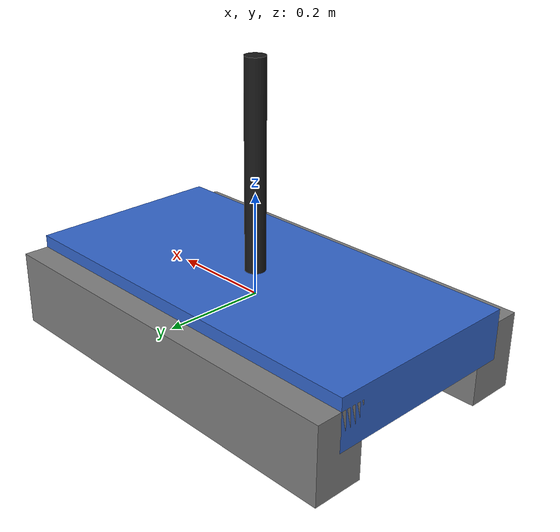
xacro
<?xml version="1.0"?>

<robot xmlns:xacro="http://www.ros.org/wiki/xacro"
       name="water_robot">

  <xacro:property name="platform_length" value="0.8"/>
  <xacro:property name="platform_width" value="0.4"/>
  <xacro:property name="platform_height" value="0.1"/>

  <xacro:property name="hull_length" value="0.8"/>
  <xacro:property name="hull_width" value="0.1"/>
  <xacro:property name="hull_height" value="0.15"/>
  <!-- Main Platform -->
  <link name="base_link">

  <visual>
    <geometry>
      <box size="${platform_length} ${platform_width} ${platform_height}"/>
    </geometry>
    <material name="blue">
      <color rgba="0.2 0.4 0.8 1.0"/>
    </material>
  </visual>

  <collision>
    <geometry>
      <box size="${platform_length} ${platform_width} ${platform_height}"/>
    </geometry>
  </collision>

  <inertial>
    <origin xyz="0 0 0"/>
    <mass value="5.0"/>
    <inertia
      ixx="0.1"
      ixy="0.0"
      ixz="0.0"
      iyy="0.1"
      iyz="0.0"
      izz="0.1"/>
  </inertial>

</link>
  <!-- Left Hull -->
  <link name="left_hull">

  <visual>
    <geometry>
      <box size="${hull_length} ${hull_width} ${hull_height}"/>
    </geometry>
    <material name="gray">
      <color rgba="0.5 0.5 0.5 1.0"/>
    </material>
  </visual>

  <collision>
    <geometry>
      <box size="${hull_length} ${hull_width} ${hull_height}"/>
    </geometry>
  </collision>

  <inertial>
    <origin xyz="0 0 0"/>
    <mass value="2.0"/>
    <inertia
      ixx="0.05"
      ixy="0.0"
      ixz="0.0"
      iyy="0.05"
      iyz="0.0"
      izz="0.05"/>
  </inertial>

</link>

  <joint name="left_hull_joint" type="fixed">
    <parent link="base_link"/>
    <child link="left_hull"/>
    <origin xyz="0 0.2 -0.05"/>
  </joint>

  <!-- Right Hull -->
  <link name="right_hull">

  <visual>
    <geometry>
      <box size="${hull_length} ${hull_width} ${hull_height}"/>
    </geometry>
    <material name="gray">
      <color rgba="0.5 0.5 0.5 1.0"/>
    </material>
  </visual>

  <collision>
    <geometry>
      <box size="${hull_length} ${hull_width} ${hull_height}"/>
    </geometry>
  </collision>

  <inertial>
    <origin xyz="0 0 0"/>
    <mass value="2.0"/>
    <inertia
      ixx="0.05"
      ixy="0.0"
      ixz="0.0"
      iyy="0.05"
      iyz="0.0"
      izz="0.05"/>
  </inertial>

</link>

  <joint name="right_hull_joint" type="fixed">
    <parent link="base_link"/>
    <child link="right_hull"/>
    <origin xyz="0 -0.2 -0.05"/>
  </joint>

  <!-- Camera Mast -->
  <link name="camera_mast">

  <visual>
    <geometry>
      <cylinder radius="0.02" length="0.4"/>
    </geometry>
    <material name="black">
      <color rgba="0.1 0.1 0.1 1.0"/>
    </material>
  </visual>

  <collision>
    <geometry>
      <cylinder radius="0.02" length="0.4"/>
    </geometry>
  </collision>

  <inertial>
    <origin xyz="0 0 0"/>
    <mass value="0.2"/>
    <inertia
      ixx="0.001"
      ixy="0.0"
      ixz="0.0"
      iyy="0.001"
      iyz="0.0"
      izz="0.001"/>
  </inertial>

</link>
  <joint name="mast_joint" type="fixed">
    <parent link="base_link"/>
    <child link="camera_mast"/>
    <origin xyz="0 0 0.25"/>
  </joint>

</robot>
